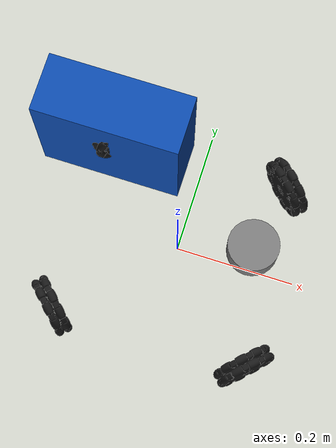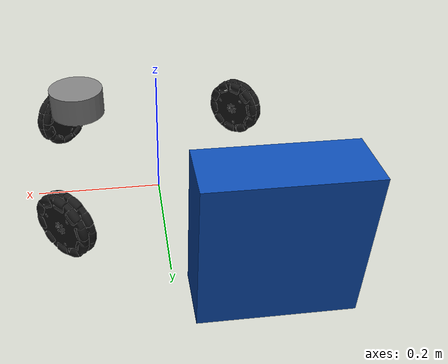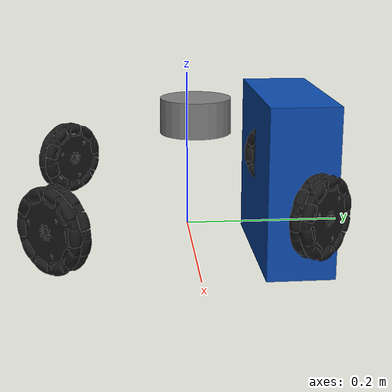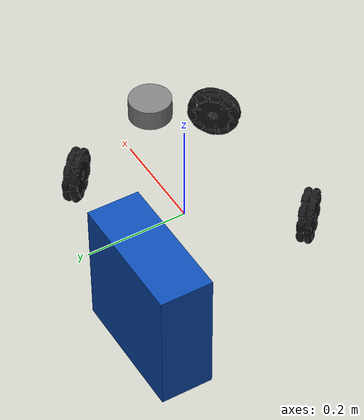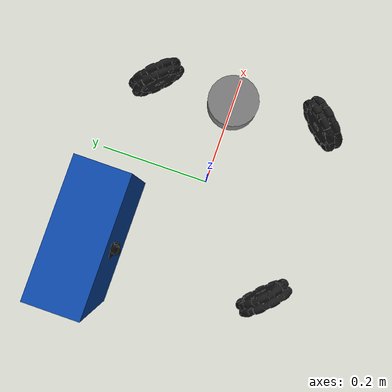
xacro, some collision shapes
<?xml version="1.0"?>
<robot xmlns:xacro="http://www.ros.org/wiki/xacro" name="tetrix_robot">

  <!-- sim_backend: classic | gz | ign -->
  <xacro:arg name="sim_backend" default="classic"/>
  <xacro:property name="sim_backend" value="$(arg sim_backend)"/>

  <!-- =====================================================================
       Constants
  ====================================================================== -->
  <xacro:property name="PI" value="3.14159265358979"/>

  <!-- Chassis dimensions (metres): 250 x 250 x 100 mm -->
  <xacro:property name="chassis_length" value="0.25"/>
  <xacro:property name="chassis_width"  value="0.25"/>
  <xacro:property name="chassis_height" value="0.10"/>
  <xacro:property name="chassis_mass"   value="2.0"/>

  <!-- Wheel dimensions: radius 100 mm, width 25 mm -->
  <xacro:property name="wheel_radius" value="0.10"/>
  <xacro:property name="wheel_width"  value="0.025"/>
  <xacro:property name="wheel_mass"   value="0.3"/>

  <!-- STL meshes are assumed to be authored in millimetres -->
  <xacro:property name="mesh_scale" value="0.001 0.001 0.001"/>

  <!-- Extra spacing to push wheels a little farther from the chassis center -->
  <xacro:property name="wheel_corner_margin" value="0.04"/>

  <!-- Wheel placement: distance from chassis centre (corner-mounted) -->
  <xacro:property name="wheel_x_offset" value="${chassis_length/2.0 - wheel_width/2.0 + wheel_corner_margin}"/>  <!-- front/rear -->
  <xacro:property name="wheel_y_offset" value="${chassis_width/2.0  - wheel_width/2.0 + wheel_corner_margin}"/>  <!-- left/right  -->
  <!-- Wheels are flush with the bottom of the chassis -->
  <xacro:property name="wheel_z_offset" value="${-chassis_height/2.0}"/>

  <!-- =====================================================================
       Materials (RViz)
  ====================================================================== -->
  <material name="tetrix_blue">
    <color rgba="0.05 0.30 0.70 1.0"/>
  </material>
  <material name="tetrix_black">
    <color rgba="0.10 0.10 0.10 1.0"/>
  </material>
  <material name="tetrix_grey">
    <color rgba="0.50 0.50 0.50 1.0"/>
  </material>

  <!-- =====================================================================
       Inertia helper macros
  ====================================================================== -->
  <!-- Solid box inertia -->
  <xacro:macro name="box_inertia" params="m l w h">
    <inertial>
      <mass value="${m}"/>
      <inertia
        ixx="${(m/12.0)*(w*w + h*h)}" ixy="0" ixz="0"
        iyy="${(m/12.0)*(l*l + h*h)}" iyz="0"
        izz="${(m/12.0)*(l*l + w*w)}"/>
    </inertial>
  </xacro:macro>

  <!-- Solid cylinder inertia (axis along y) -->
  <xacro:macro name="cylinder_inertia" params="m r h">
    <inertial>
      <mass value="${m}"/>
      <inertia
        ixx="${(m/12.0)*(3*r*r + h*h)}" ixy="0" ixz="0"
        iyy="${(m/2.0)*r*r}"             iyz="0"
        izz="${(m/12.0)*(3*r*r + h*h)}"/>
    </inertial>
  </xacro:macro>

  <xacro:macro name="omni_wheel" params="name x_pos y_pos yaw">

    <link name="${name}_wheel_link">
      <visual>
        <!-- Rotate so cylinder axis aligns with Y (wheel spins around Y) -->
        <origin xyz="-0.062 -0.1 -0.072" rpy="0 0 0"/>
        <geometry>
          <mesh filename="file://$(find tetrix_description)/meshes/Omni_Wheel.STL" scale="${mesh_scale}"/>
        </geometry>
        <material name="tetrix_black"/>
      </visual>
      <collision>
        <origin xyz="-0.062 -0.1 -0.072" rpy="0 0 0"/>
        <geometry>
          <cylinder radius="${wheel_radius}" length="${wheel_width}"/>
        </geometry>
      </collision>
      <xacro:cylinder_inertia m="${wheel_mass}" r="${wheel_radius}" h="${wheel_width}"/>
    </link>

    <joint name="${name}_wheel_joint" type="continuous">
      <parent link="base_link"/>
      <child  link="${name}_wheel_link"/>
      <origin xyz="${x_pos} ${y_pos} ${wheel_z_offset}" rpy="0 0 ${yaw}"/>
      <axis xyz="0 1 0"/>
      <dynamics damping="0.1" friction="0.1"/>
      <limit effort="10.0" velocity="5.0"/>
    </joint>

    <gazebo reference="${name}_wheel_link">
      <material>Gazebo/Black</material>
      <!-- Omni-wheel friction: high longitudinal grip, near-zero lateral
           (passive rollers allow free sliding perpendicular to wheel axis) -->
      <mu1>1.0</mu1>
      <mu2>0.01</mu2>
      <kp>1e6</kp>
      <kd>1.0</kd>
    </gazebo>

  </xacro:macro>

  <!-- =====================================================================
       Base footprint – virtual link at ground level
  ====================================================================== -->
  <link name="base_footprint"/>

  <joint name="base_footprint_to_base" type="fixed">
    <parent link="base_footprint"/>
    <child  link="base_link"/>
    <origin xyz="0 0 ${wheel_radius}" rpy="0 0 0"/>
  </joint>

  <!-- =====================================================================
       Chassis
  ====================================================================== -->
  <link name="base_link">
    <visual>
      <origin xyz="-0.1605 0.165 -0.08 " rpy="1.570796327 0 0"/>
      <geometry>
        <mesh filename="file://$(find tetrix_description)/meshes/Robot_base.STL" scale="${mesh_scale}"/>
      </geometry>
      <material name="tetrix_blue"/>
    </visual>
    <collision>
      <origin xyz="-0.1605 0.165 -0.08 " rpy="1.570796327 0 0"/>
      <geometry>
        <box size="${chassis_length} ${chassis_width} ${chassis_height}"/>
      </geometry>
    </collision>
    <xacro:box_inertia m="${chassis_mass}"
                       l="${chassis_length}"
                       w="${chassis_width}"
                       h="${chassis_height}"/>
  </link>

  <gazebo reference="base_link">
    <material>Gazebo/Blue</material>
  </gazebo>

  <xacro:omni_wheel name="front_left"
    x_pos=" ${wheel_x_offset}" y_pos=" ${wheel_y_offset}" yaw="${-PI/4.0}"/>
  <xacro:omni_wheel name="front_right"
    x_pos=" ${wheel_x_offset}" y_pos="${-wheel_y_offset}" yaw="${PI/4.0}"/>
  <xacro:omni_wheel name="rear_left"
    x_pos="${-wheel_x_offset}" y_pos=" ${wheel_y_offset}" yaw="${PI/4.0}"/>
  <xacro:omni_wheel name="rear_right"
    x_pos="${-wheel_x_offset}" y_pos="${-wheel_y_offset}" yaw="${-PI/4.0}"/>

  <!-- =====================================================================
       Optional sensors
  ====================================================================== -->

  <!-- LiDAR mount -->
  <link name="lidar_link">
    <visual>
      <origin xyz="0 0 0" rpy="0 0 0"/>
      <geometry>
        <cylinder radius="0.04" length="0.04"/>
      </geometry>
      <material name="tetrix_grey"/>
    </visual>
    <collision>
      <origin xyz="0 0 0" rpy="0 0 0"/>
      <geometry>
        <cylinder radius="0.04" length="0.04"/>
      </geometry>
    </collision>
    <xacro:cylinder_inertia m="0.1" r="0.04" h="0.04"/>
  </link>

  <joint name="lidar_joint" type="fixed">
    <parent link="base_link"/>
    <child  link="lidar_link"/>
    <origin xyz="0.12 0 ${chassis_height/2 + 0.02}" rpy="0 0 0"/>
  </joint>

  <!-- Gazebo LiDAR plugin (Classic only) -->
  <xacro:if value="${sim_backend == 'classic'}">
    <gazebo reference="lidar_link">
      <material>Gazebo/Grey</material>
      <sensor name="lidar" type="ray">
        <always_on>true</always_on>
        <visualize>true</visualize>
        <update_rate>10</update_rate>
        <ray>
          <scan>
            <horizontal>
              <samples>360</samples>
              <resolution>1</resolution>
              <min_angle>-${PI}</min_angle>
              <max_angle> ${PI}</max_angle>
            </horizontal>
          </scan>
          <range>
            <min>0.12</min>
            <max>10.0</max>
            <resolution>0.01</resolution>
          </range>
        </ray>
        <plugin name="gazebo_ros_lidar" filename="libgazebo_ros_ray_sensor.so">
          <ros>
            <remapping>~/out:=scan</remapping>
          </ros>
          <output_type>sensor_msgs/LaserScan</output_type>
          <frame_name>lidar_link</frame_name>
        </plugin>
      </sensor>
    </gazebo>
  </xacro:if>

  <xacro:if value="${sim_backend == 'classic'}">
    <gazebo>
      <plugin name="gazebo_ros_planar_move" filename="libgazebo_ros_planar_move.so">
        <ros>
          <remapping>cmd_vel:=cmd_vel</remapping>
          <remapping>odom:=odom</remapping>
        </ros>
        <update_rate>50</update_rate>
        <publish_rate>20</publish_rate>
        <publish_odom>true</publish_odom>
        <publish_odom_tf>true</publish_odom_tf>
        <odometry_frame>odom</odometry_frame>
        <robot_base_frame>base_footprint</robot_base_frame>
      </plugin>
    </gazebo>
  </xacro:if>

  <!-- Gazebo Harmonic / Ignition LiDAR sensor topic -->
  <xacro:unless value="${sim_backend == 'classic'}">
    <gazebo reference="lidar_link">
      <sensor name="lidar" type="ray">
        <always_on>true</always_on>
        <visualize>true</visualize>
        <update_rate>10</update_rate>
        <topic>scan</topic>
        <ray>
          <scan>
            <horizontal>
              <samples>360</samples>
              <resolution>1</resolution>
              <min_angle>-${PI}</min_angle>
              <max_angle>${PI}</max_angle>
            </horizontal>
          </scan>
          <range>
            <min>0.12</min>
            <max>10.0</max>
            <resolution>0.01</resolution>
          </range>
        </ray>
      </sensor>
    </gazebo>
  </xacro:unless>

  <!-- Gazebo Harmonic mecanum/omni drive system with odometry -->
  <xacro:if value="${sim_backend == 'gz'}">
    <gazebo>
      <plugin filename="gz-sim-mecanum-drive-system" name="gz::sim::systems::MecanumDrive">
        <front_left_joint>front_left_wheel_joint</front_left_joint>
        <front_right_joint>front_right_wheel_joint</front_right_joint>
        <back_left_joint>rear_left_wheel_joint</back_left_joint>
        <back_right_joint>rear_right_wheel_joint</back_right_joint>
        <wheel_separation>${2.0 * wheel_y_offset}</wheel_separation>
        <wheelbase>${2.0 * wheel_x_offset}</wheelbase>
        <wheel_radius>${wheel_radius}</wheel_radius>
        <topic>cmd_vel</topic>
        <odom_topic>odom</odom_topic>
        <child_frame_id>base_footprint</child_frame_id>
        <odom_publish_frequency>30</odom_publish_frequency>
      </plugin>
    </gazebo>
  </xacro:if>

  <!-- Ignition Gazebo mecanum/omni drive system with odometry -->
  <xacro:if value="${sim_backend == 'ign'}">
    <gazebo>
      <plugin filename="ignition-gazebo-mecanum-drive-system" name="ignition::gazebo::systems::MecanumDrive">
        <front_left_joint>front_left_wheel_joint</front_left_joint>
        <front_right_joint>front_right_wheel_joint</front_right_joint>
        <back_left_joint>rear_left_wheel_joint</back_left_joint>
        <back_right_joint>rear_right_wheel_joint</back_right_joint>
        <wheel_separation>${2.0 * wheel_y_offset}</wheel_separation>
        <wheelbase>${2.0 * wheel_x_offset}</wheelbase>
        <wheel_radius>${wheel_radius}</wheel_radius>
        <topic>cmd_vel</topic>
        <odom_topic>odom</odom_topic>
        <child_frame_id>base_footprint</child_frame_id>
        <odom_publish_frequency>30</odom_publish_frequency>
      </plugin>
    </gazebo>
  </xacro:if>

</robot>
